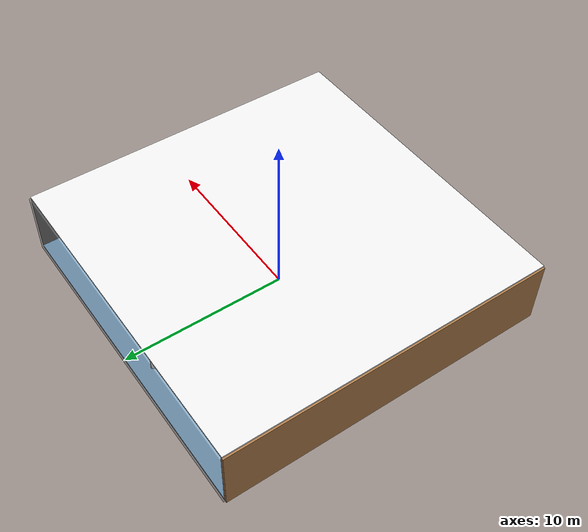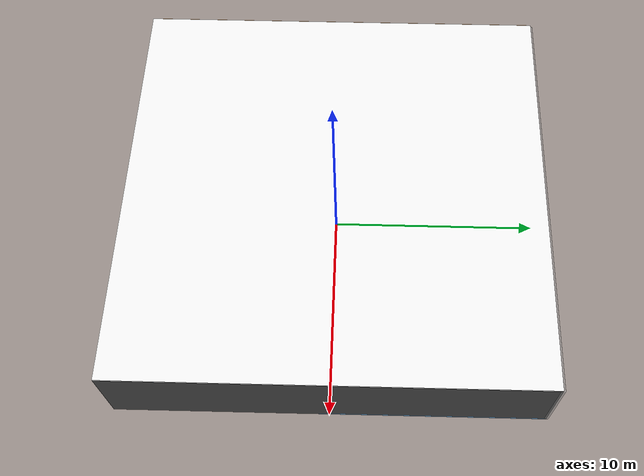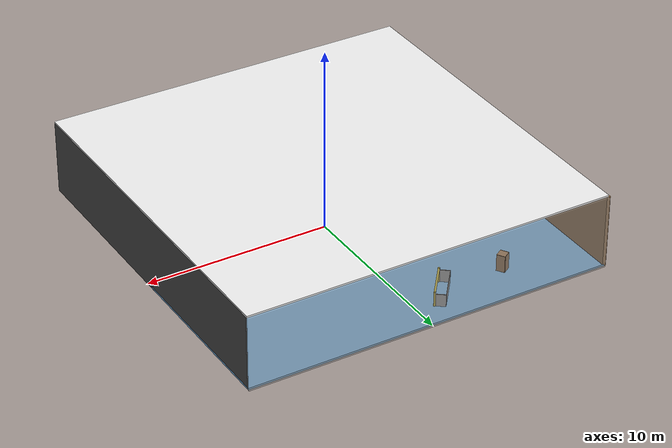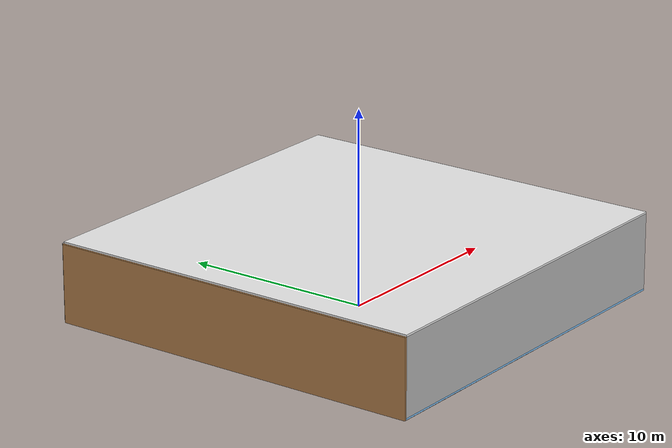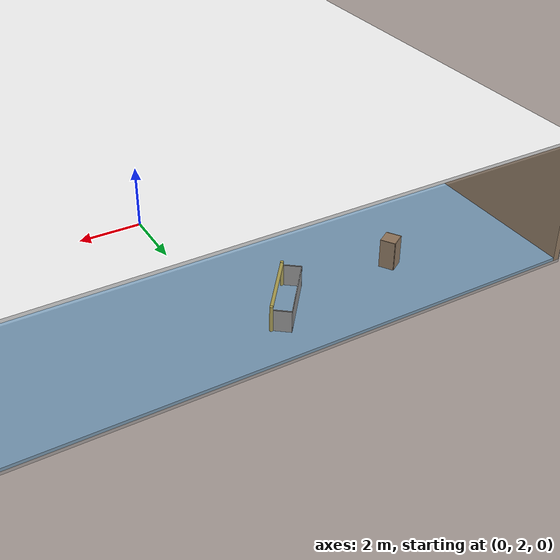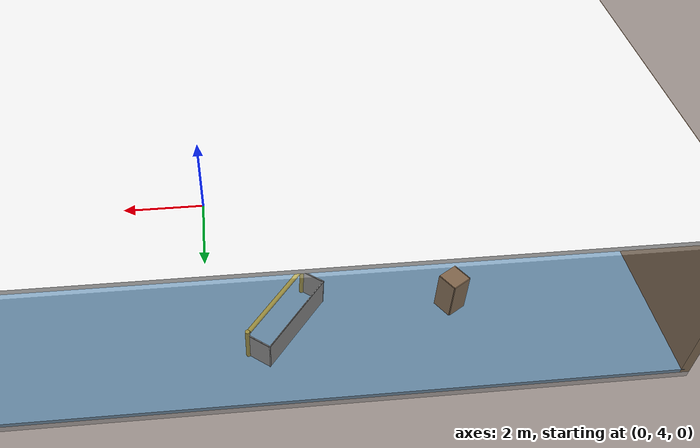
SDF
<sdf version="1.4">
 <world name="default">
  <physics type="ode">
   <max_step_size>0.001</max_step_size>
   <real_time_factor>1</real_time_factor>
   <real_time_update_rate>1000</real_time_update_rate>
   <gravity>0 0 -9.8</gravity>
  </physics>
  <scene><ambient>0.4 0.4 0.4 1</ambient><background>0.7 0.7 0.7 1</background><shadows>1</shadows></scene>
  <model name="Surrounding">
   <static>1</static>
   <link name="Ceiling">
    <collision name="Ceiling_Collision"><geometry><box><size>20 20 0.1</size></box></geometry></collision>
    <visual name="Ceiling_Visual">
     <geometry><box><size>20 20 0.1</size></box></geometry>
     <material>
      <script><uri>file://media/materials/scripts/gazebo.material</uri><name>Gazebo/White</name></script>
     </material>
    </visual>
    <pose>0 0 4.05 0 0 0</pose>
   </link>
   <link name="Wall_South">
    <collision name="Wall_South_Collision">
     <geometry><box><size>20 0 4</size></box></geometry>
     <pose>0 0 2 0 -0 0</pose>
    </collision>
    <visual name="Wall_South_Visual">
     <pose>0 0 2 0 -0 0</pose>
     <geometry><box><size>20 0 4</size></box></geometry>
     <material>
      <script><uri>file://media/materials/scripts/gazebo.material</uri><name>Gazebo/Pioneer2Body</name></script>
     </material>
    </visual>
    <velocity_decay><linear>0</linear><angular>0</angular></velocity_decay>
    <pose>0 -10 0 0 -0 0</pose>
   </link>
   <link name="Wall_East">
    <collision name="Wall_21_Collision">
     <geometry><box><size>20 0 4</size></box></geometry>
     <pose>0 0 2 0 -0 0</pose>
    </collision>
    <visual name="Wall_21_Visual">
     <pose>0 0 2 0 -0 0</pose>
     <geometry><box><size>20 0 4</size></box></geometry>
     <material>
      <script><uri>file://media/materials/scripts/gazebo.material</uri><name>Gazebo/Road</name></script>
     </material>
    </visual>
    <velocity_decay><linear>0</linear><angular>0</angular></velocity_decay>
    <pose>10 0 0 0 -0 1.5708</pose>
   </link>
   <link name="Wall_North">
    <collision name="Wall_22_Collision">
     <geometry><box><size>20 0.2 4</size></box></geometry>
     <pose>0 0 2 0 -0 0</pose>
    </collision>
    <visual name="Wall_22_Visual">
     <pose>0 0 2 0 -0 0</pose>
     <geometry><box><size>20 0.2 4</size></box></geometry>
     <material>
      <script><uri>file://media/materials/scripts/gazebo.material</uri><name>Gazebo/GreyTransparent</name></script>
     </material>
    </visual>
    <velocity_decay><linear>0</linear><angular>0</angular></velocity_decay>
    <pose>0 10 0 0 -0 0</pose>
   </link>
   <link name="Wall_West">
    <collision name="Wall_23_Collision">
     <geometry><box><size>20 0.2 4</size></box></geometry>
     <pose>0 0 2 0 -0 0</pose>
    </collision>
    <visual name="Wall_23_Visual">
     <pose>0 0 2 0 -0 0</pose>
     <geometry><box><size>20 0.2 4</size></box></geometry>
     <material>
      <script><uri>file://media/materials/scripts/gazebo.material</uri><name>Gazebo/WoodPallet</name></script>
     </material>
    </visual>
    <velocity_decay><linear>0</linear><angular>0</angular></velocity_decay>
    <pose>-10 0 0 0 0 -1.5708</pose>
   </link>
   <link name="Ground_link">
    <collision name="collision">
     <pose>0 0 .05 0 -0 0</pose>
     <geometry><box><size>20 20 0.1</size></box></geometry>
    </collision>
    <visual name="visual">
     <pose>0 0 .05 0 -0 0</pose>
     <geometry><box><size>20 20 0.1</size></box></geometry>
     <material>
      <script><uri>file://media/materials/scripts/gazebo.material</uri><name>Gazebo/SkyBlue</name></script>
     </material>
    </visual>
   </link>
   <static>1</static>
  </model>
  <spherical_coordinates>
   <surface_model>EARTH_WGS84</surface_model>
   <latitude_deg>0</latitude_deg>
   <longitude_deg>0</longitude_deg>
   <elevation>0</elevation>
   <heading_deg>0</heading_deg>
  </spherical_coordinates>
  <light name="lightball_0" type="diffuse">
   <diffuse>0.8 0.8 0.8 1</diffuse>
   <specular>0.2 0.2 0.2 1</specular>
   <attenuation>
    <range>100</range>
    <constant>0.7</constant>
    <linear>0.01</linear>
    <quadratic>0.001</quadratic>
   </attenuation>
   <direction>-0.5 0.1 -0.9</direction>
   <pose>-4.05740226191 -8.33878199987 2.46733542064 0 0 0</pose>
  </light>
  <light name="lightball_1" type="diffuse">
   <diffuse>0.8 0.8 0.8 1</diffuse>
   <specular>0.2 0.2 0.2 1</specular>
   <attenuation>
    <range>100</range>
    <constant>0.7</constant>
    <linear>0.01</linear>
    <quadratic>0.001</quadratic>
   </attenuation>
   <direction>-0.5 0.1 -0.9</direction>
   <pose>2.70976198479 -0.543075206875 3.49937802403 0 0 0</pose>
  </light>
  <light name="lightball_2" type="diffuse">
   <diffuse>0.8 0.8 0.8 1</diffuse>
   <specular>0.2 0.2 0.2 1</specular>
   <attenuation>
    <range>100</range>
    <constant>0.7</constant>
    <linear>0.01</linear>
    <quadratic>0.001</quadratic>
   </attenuation>
   <direction>-0.5 0.1 -0.9</direction>
   <pose>-3.33546976558 -0.0843308269197 2.83067345594 0 0 0</pose>
  </light>
  <light name="lightball_3" type="diffuse">
   <diffuse>0.8 0.8 0.8 1</diffuse>
   <specular>0.2 0.2 0.2 1</specular>
   <attenuation>
    <range>100</range>
    <constant>0.7</constant>
    <linear>0.01</linear>
    <quadratic>0.001</quadratic>
   </attenuation>
   <direction>-0.5 0.1 -0.9</direction>
   <pose>-4.57240159603 3.18048903163 0.535710325826 0 0 0</pose>
  </light>
  <light name="lightball_4" type="diffuse">
   <diffuse>0.8 0.8 0.8 1</diffuse>
   <specular>0.2 0.2 0.2 1</specular>
   <attenuation>
    <range>100</range>
    <constant>0.7</constant>
    <linear>0.01</linear>
    <quadratic>0.001</quadratic>
   </attenuation>
   <direction>-0.5 0.1 -0.9</direction>
   <pose>-0.569405140304 8.93522646477 2.53747105211 0 0 0</pose>
  </light>
  <light name="lightball_5" type="diffuse">
   <diffuse>0.8 0.8 0.8 1</diffuse>
   <specular>0.2 0.2 0.2 1</specular>
   <attenuation>
    <range>100</range>
    <constant>0.7</constant>
    <linear>0.01</linear>
    <quadratic>0.001</quadratic>
   </attenuation>
   <direction>-0.5 0.1 -0.9</direction>
   <pose>2.4260721811 0.372348732187 1.05676266942 0 0 0</pose>
  </light>
  <light name="lightball_6" type="diffuse">
   <diffuse>0.8 0.8 0.8 1</diffuse>
   <specular>0.2 0.2 0.2 1</specular>
   <attenuation>
    <range>100</range>
    <constant>0.7</constant>
    <linear>0.01</linear>
    <quadratic>0.001</quadratic>
   </attenuation>
   <direction>-0.5 0.1 -0.9</direction>
   <pose>7.5016835607 6.07047390926 2.88277230726 0 0 0</pose>
  </light>
  <include><uri>model://cabinet</uri><pose>-7.68674346599 -7.85157881166 0 0 0 1.41275848631</pose></include>
  <include><uri>model://cabinet</uri><pose>-5.15697499885 -4.13439168993 0 0 0 0.0618309975169</pose></include>
  <include><uri>model://cabinet</uri><pose>-5.44850005917 7.81010931336 0 0 0 2.13720813508</pose></include>
  <include>
   <uri>model://construction_cone</uri>
   <pose>-1.79479794728 -7.48593543095 0 0 0 0.323214496679</pose>
  </include>
  <include>
   <uri>model://robocup_3Dsim_goal</uri>
   <pose>-1.53616301991 7.95163097037 0 0 0 2.47321980689</pose>
  </include>
  <include>
   <uri>model://textured_shapes</uri>
   <pose>7.76231445314 -3.66391181606 0 0 0 2.63268004806</pose>
  </include>
 </world>
</sdf>

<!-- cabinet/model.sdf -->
<sdf version="1.5">
  <model name="cabinet">
    <static>true</static>
    <link name="cabinet_bottom_plate">
      <inertial>
        <pose>0 0 -1 0 0 0</pose>
        <inertia>
          <ixx>2.050000</ixx>
          <ixy>0</ixy>
          <ixz>0</ixz>
          <iyy>2.050000</iyy>
          <iyz>0</iyz>
          <izz>2.050000</izz>
        </inertia>
        <mass>25.000000</mass>
      </inertial>
      <collision name="cabinet_bottom_plate_geom">
        <pose>0 0 0.010000 0 0 0</pose>
        <geometry>
          <box>
            <size>0.450000 0.450000 0.020000</size>
          </box>
        </geometry>
      </collision>
      <visual name="cabinet_bottom_plate_geom_visual">
        <pose>0 0 0.010000 0 0 0</pose>
        <geometry>
          <box>
            <size>0.450000 0.450000 0.020000</size>
          </box>
        </geometry>
        <material>
          <script>
            <uri>model://media/materials/scripts/gazebo.material</uri>
            <name>Gazebo/Wood</name>
          </script>
        </material>
      </visual>
      <collision name="cabinet_bottom_plate_geom_cabinet_back_plate">
        <pose>0.235000 0 0.510000 0 0 0</pose>
        <geometry>
          <box>
            <size>0.020000 0.450000 1.020000</size>
          </box>
        </geometry>
      </collision>
      <visual name="cabinet_bottom_plate_geom_cabinet_back_plate_visual">
        <pose>0.235000 0 0.510000 0 0 0</pose>
        <geometry>
          <box>
            <size>0.020000 0.450000 1.020000</size>
          </box>
        </geometry>
        <material>
          <script>
            <uri>model://media/materials/scripts/gazebo.material</uri>
            <name>Gazebo/Wood</name>
          </script>
        </material>
      </visual>
      <collision name="cabinet_bottom_plate_geom_cabinet_left_plate">
        <pose>0 0.235000 0.510000 0 0 0</pose>
        <geometry>
          <box>
            <size>0.450000 0.020000 1.020000</size>
          </box>
        </geometry>
      </collision>
      <visual name="cabinet_bottom_plate_geom_cabinet_left_plate_visual">
        <pose>0 0.235000 0.510000 0 0 0</pose>
        <geometry>
          <box>
            <size>0.450000 0.020000 1.020000</size>
          </box>
        </geometry>
        <material>
          <script>
            <uri>model://media/materials/scripts/gazebo.material</uri>
            <name>Gazebo/Wood</name>
          </script>
        </material>
      </visual>
      <collision name="cabinet_bottom_plate_geom_cabinet_middle_plate">
        <pose>0 0 0.510000 0 0 0</pose>
        <geometry>
          <box>
            <size>0.450000 0.450000 0.020000</size>
          </box>
        </geometry>
      </collision>
      <visual name="cabinet_bottom_plate_geom_cabinet_middle_plate_visual">
        <pose>0 0 0.510000 0 0 0</pose>
        <geometry>
          <box>
            <size>0.450000 0.450000 0.020000</size>
          </box>
        </geometry>
        <material>
          <script>
            <uri>model://media/materials/scripts/gazebo.material</uri>
            <name>Gazebo/Wood</name>
          </script>
        </material>
      </visual>
      <collision name="cabinet_bottom_plate_geom_cabinet_right_plate">
        <pose>0 -0.235000 0.510000 0 0 0</pose>
        <geometry>
          <box>
            <size>0.450000 0.020000 1.020000</size>
          </box>
        </geometry>
      </collision>
      <visual name="cabinet_bottom_plate_geom_cabinet_right_plate_visual">
        <pose>0 -0.235000 0.510000 0 0 0</pose>
        <geometry>
          <box>
            <size>0.450000 0.020000 1.020000</size>
          </box>
        </geometry>
        <material>
          <script>
            <uri>model://media/materials/scripts/gazebo.material</uri>
            <name>Gazebo/Wood</name>
          </script>
        </material>
      </visual>
      <collision name="cabinet_bottom_plate_geom_cabinet_top_plate">
        <pose>0 0 1.010000 0 0 0</pose>
        <geometry>
          <box>
            <size>0.450000 0.450000 0.020000</size>
          </box>
        </geometry>
      </collision>
      <visual name="cabinet_bottom_plate_geom_cabinet_top_plate_visual">
        <pose>0 0 1.010000 0 0 0</pose>
        <geometry>
          <box>
            <size>0.450000 0.450000 0.020000</size>
          </box>
        </geometry>
        <material>
          <script>
            <uri>model://media/materials/scripts/gazebo.material</uri>
            <name>Gazebo/Wood</name>
          </script>
        </material>
      </visual>
    </link>
  </model>
</sdf>

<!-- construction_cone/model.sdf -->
<sdf version="1.5">
  <model name="Construction Cone">
    <link name="link">
      <collision name="collision">
        <geometry>
          <mesh>
            <scale>10 10 10</scale>
            <uri>file://isr-testbed/construction_cone/meshes/construction_cone.dae</uri>
          </mesh>
        </geometry>
      </collision>
      <visual name="visual">
        <geometry>
          <mesh>
            <scale>10 10 10</scale>
            <uri>file://isr-testbed/construction_cone/meshes/construction_cone.dae</uri>
          </mesh>
        </geometry>
      </visual>
    </link>
  </model>
</sdf>

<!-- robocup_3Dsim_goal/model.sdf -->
<sdf version="1.5">
  <model name="robocup_3d_goal">
    <static>true</static>
    <link name="left_post">
      <pose>0 1.05 0.45 0 0 0</pose>
      <collision name="collision">
        <geometry>
          <cylinder>
            <radius>0.05</radius>
            <length>0.9</length>
          </cylinder>
        </geometry>
      </collision>
      <visual name="visual">
        <geometry>
          <cylinder>
            <radius>0.05</radius>
            <length>0.9</length>
          </cylinder>
        </geometry>
        <material>
          <script>
            <uri>file://media/materials/scripts/gazebo.material</uri>
            <name>Gazebo/ZincYellow</name>
          </script>
        </material>
      </visual>
    </link>
    <link name="left_support_horiz_lower">
      <pose>0.30 1.05 0.01 0 0 0</pose>
      <collision name="collision">
        <geometry>
          <box>
            <size>0.50 0.02 0.02</size>
          </box>
        </geometry>
      </collision>
      <visual name="visual">
        <geometry>
          <box>
            <size>0.50 0.02 0.02</size>
          </box>
        </geometry>
        <material>
          <script>
            <uri>file://media/materials/scripts/gazebo.material</uri>
            <name>Gazebo/White</name>
          </script>
        </material>
      </visual>
    </link>
    <link name="left_support_horiz_upper">
      <pose>0.30 1.05 0.79 0 0 0</pose>
      <collision name="collision">
        <geometry>
          <box>
            <size>0.50 0.02 0.02</size>
          </box>
        </geometry>
      </collision>
      <visual name="visual">
        <geometry>
          <box>
            <size>0.50 0.02 0.02</size>
          </box>
        </geometry>
        <material>
          <script>
            <uri>file://media/materials/scripts/gazebo.material</uri>
            <name>Gazebo/White</name>
          </script>
        </material>
      </visual>
    </link>
    <link name="left_support_vertical">
      <pose>0.56 1.05 0.4 0 1.5708 0</pose>
      <collision name="collision">
        <geometry>
          <box>
            <size>0.80 0.02 0.02</size>
          </box>
        </geometry>
      </collision>
      <visual name="visual">
        <geometry>
          <box>
            <size>0.80 0.02 0.02</size>
          </box>
        </geometry>
        <material>
          <script>
            <uri>file://media/materials/scripts/gazebo.material</uri>
            <name>Gazebo/White</name>
          </script>
        </material>
      </visual>
    </link>
    <link name="right_support_horiz_lower">
      <pose>0.30 -1.05 0.01 0 0 0</pose>
      <collision name="collision">
        <geometry>
          <box>
            <size>0.50 0.02 0.02</size>
          </box>
        </geometry>
      </collision>
      <visual name="visual">
        <geometry>
          <box>
            <size>0.50 0.02 0.02</size>
          </box>
        </geometry>
        <material>
          <script>
            <uri>file://media/materials/scripts/gazebo.material</uri>
            <name>Gazebo/White</name>
          </script>
        </material>
      </visual>
    </link>
    <link name="right_support_horiz_upper">
      <pose>0.30 -1.05 0.79 0 0 0</pose>
      <collision name="collision">
        <geometry>
          <box>
            <size>0.50 0.02 0.02</size>
          </box>
        </geometry>
      </collision>
      <visual name="visual">
        <geometry>
          <box>
            <size>0.50 0.02 0.02</size>
          </box>
        </geometry>
        <material>
          <script>
            <uri>file://media/materials/scripts/gazebo.material</uri>
            <name>Gazebo/White</name>
          </script>
        </material>
      </visual>
    </link>
    <link name="right_support_vertical">
      <pose>0.56 -1.05 0.4 0 1.5708 0</pose>
      <collision name="collision">
        <geometry>
          <box>
            <size>0.80 0.02 0.02</size>
          </box>
        </geometry>
      </collision>
      <visual name="visual">
        <geometry>
          <box>
            <size>0.80 0.02 0.02</size>
          </box>
        </geometry>
        <material>
          <script>
            <uri>file://media/materials/scripts/gazebo.material</uri>
            <name>Gazebo/White</name>
          </script>
        </material>
      </visual>
    </link>
    <link name="center_support_horiz_lower">
      <pose>0.56 0 0.01 0 1.5708 0</pose>
      <collision name="collision">
        <geometry>
          <box>
            <size>0.02 2.08 0.02</size>
          </box>
        </geometry>
      </collision>
      <visual name="visual">
        <geometry>
          <box>
            <size>0.02 2.08 0.02</size>
          </box>
        </geometry>
        <material>
          <script>
            <uri>file://media/materials/scripts/gazebo.material</uri>
            <name>Gazebo/White</name>
          </script>
        </material>
      </visual>
    </link>
    <link name="center_support_horiz_upper">
      <pose>0.56 0 0.79 0 1.5708 0</pose>
      <collision name="collision">
        <geometry>
          <box>
            <size>0.02 2.08 0.02</size>
          </box>
        </geometry>
      </collision>
      <visual name="visual">
        <geometry>
          <box>
            <size>0.02 2.08 0.02</size>
          </box>
        </geometry>
        <material>
          <script>
            <uri>file://media/materials/scripts/gazebo.material</uri>
            <name>Gazebo/White</name>
          </script>
        </material>
      </visual>
    </link>
    <link name="right_post">
      <pose>0 -1.05 0.45 0 0 0</pose>
      <collision name="collision">
        <geometry>
          <cylinder>
            <radius>0.05</radius>
            <length>0.9</length>
          </cylinder>
        </geometry>
      </collision>
      <visual name="visual">
        <geometry>
          <cylinder>
            <radius>0.05</radius>
            <length>0.9</length>
          </cylinder>
        </geometry>
        <material>
          <script>
            <uri>file://media/materials/scripts/gazebo.material</uri>
            <name>Gazebo/ZincYellow</name>
          </script>
        </material>
      </visual>
    </link>
    <link name="crossbar">
      <pose>0 0 0.85 1.57 1.57 0</pose>
      <collision name="collision">
        <geometry>
          <cylinder>
            <radius>0.05</radius>
            <length>2.0</length>
          </cylinder>
        </geometry>
      </collision>
      <visual name="visual">
        <geometry>
          <cylinder>
            <radius>0.05</radius>
            <length>2.0</length>
          </cylinder>
        </geometry>
        <material>
          <script>
            <uri>file://media/materials/scripts/gazebo.material</uri>
            <name>Gazebo/ZincYellow</name>
          </script>
        </material>
      </visual>
    </link>
    <link name="center_net">
      <pose>0.56 0 0.40 0 0 0</pose>
      <collision name="collision">
        <geometry>
          <box>
            <size>0.01 2.1 0.80</size>
          </box>
        </geometry>
      </collision>
      <visual name="visual">
        <geometry>
          <box>
            <size>0.01 2.1 0.80</size>
          </box>
        </geometry>
        <material>
          <script>
            <uri>model://../model_source/models/robocup09_spl_field/materials/scripts/</uri>
            <uri>model://../model_source/models/robocup09_spl_field/materials/textures/</uri>
            <name>RoboCup/Net</name>
          </script>
        </material>
      </visual>
    </link>
    <link name="left_net">
      <pose>0.30 1.05 0.40 0 0 0</pose>
      <collision name="collision">
        <geometry>
          <box>
            <size>0.50 0.01 0.76</size>
          </box>
        </geometry>
      </collision>
      <visual name="visual">
        <geometry>
          <box>
            <size>0.50 0.01 0.76</size>
          </box>
        </geometry>
        <material>
          <script>
            <uri>model://../model_source/models/robocup09_spl_field/materials/scripts/</uri>
            <uri>model://../model_source/models/robocup09_spl_field/materials/textures/</uri>
            <name>RoboCup/Net</name>
          </script>
        </material>
      </visual>
    </link>
    <link name="right_net">
      <pose>0.30 -1.05 0.40 0 0 0</pose>
      <collision name="collision">
        <geometry>
          <box>
            <size>0.50 0.01 0.76</size>
          </box>
        </geometry>
      </collision>
      <visual name="visual">
        <geometry>
          <box>
            <size>0.50 0.01 0.76</size>
          </box>
        </geometry>
        <material>
          <script>
            <uri>model://../model_source/models/robocup09_spl_field/materials/scripts/</uri>
            <uri>model://../model_source/models/robocup09_spl_field/materials/textures/</uri>
            <name>RoboCup/Net</name>
          </script>
        </material>
      </visual>
    </link>
  </model>
</sdf>

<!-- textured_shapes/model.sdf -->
<sdf version="1.6">
  <model name="textured_shapes">
    <pose>0 0 0.5 0 0 0</pose>
    <link name="box">
      <pose>0 -1.5 0 0 0 0</pose>
      <collision name="collision">
        <geometry>
          <box>
            <size>1 1 1</size>
          </box>
        </geometry>
      </collision>
      <visual name="visual">
        <geometry>
          <box>
            <size>1 1 1</size>
          </box>
        </geometry>
        <material>
          <script>
            <uri>model://../model_source/models/textured_shapes/materials/scripts</uri>
            <uri>model://../model_source/models/textured_shapes/materials/textures</uri>
            <name>TexturedShape/Squares</name>
          </script>
        </material>
      </visual>
    </link>
    <link name="sphere">
      <collision name="collision">
        <geometry>
          <sphere>
            <radius>0.5</radius>
          </sphere>
        </geometry>
      </collision>
      <visual name="visual">
        <geometry>
          <sphere>
            <radius>0.5</radius>
          </sphere>
        </geometry>
        <material>
          <script>
            <uri>model://../model_source/models/textured_shapes/materials/scripts</uri>
            <uri>model://../model_source/models/textured_shapes/materials/textures</uri>
            <name>TexturedShape/Squares</name>
          </script>
        </material>
      </visual>
    </link>
    <link name="cylinder">
      <pose>0 1.5 0 0 0 0</pose>
      <collision name="collision">
        <geometry>
          <cylinder>
            <radius>0.5</radius>
            <length>1</length>
          </cylinder>
        </geometry>
      </collision>
      <visual name="visual">
        <geometry>
          <cylinder>
            <radius>0.5</radius>
            <length>1</length>
          </cylinder>
        </geometry>
        <material>
          <script>
            <uri>model://../model_source/models/textured_shapes/materials/scripts</uri>
            <uri>model://../model_source/models/textured_shapes/materials/textures</uri>
            <name>TexturedShape/Squares</name>
          </script>
        </material>
      </visual>
    </link>
  </model>
</sdf>
